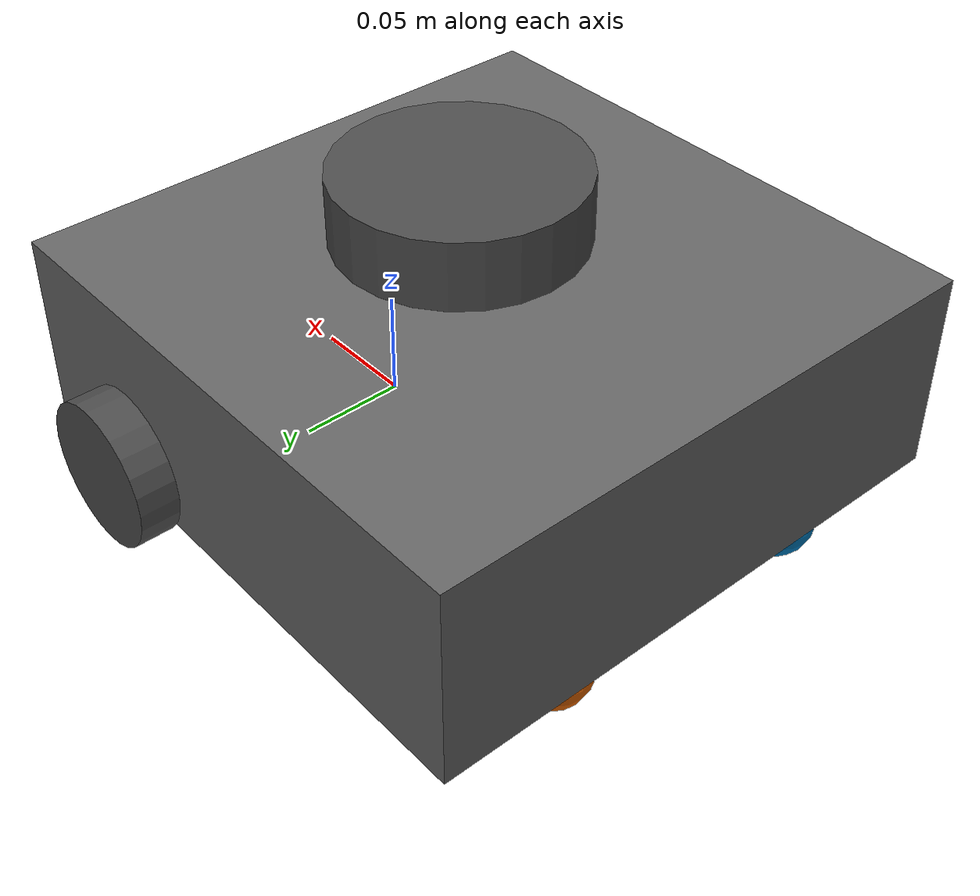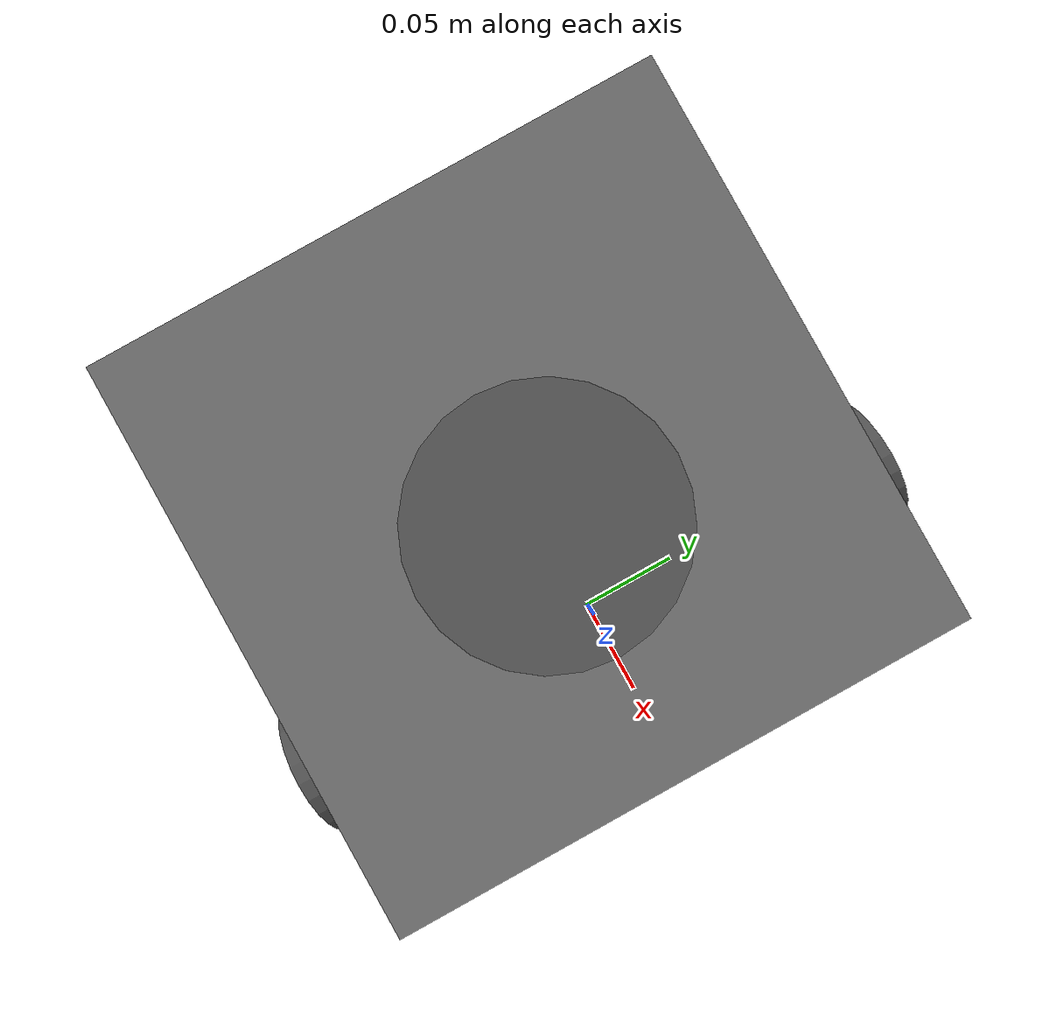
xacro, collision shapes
<?xml version="1.0" ?>
<robot name="turtlebot3_waffle_pi" xmlns:xacro="http://ros.org/wiki/xacro">

  <!-- ── Configurable parameters ──────────────────────────────────────── -->
  <xacro:arg name="laser_noise_std" default="0.01"/>
  <!-- 0.01 = Env A (moderate), 0.05 = Env B (high noise) -->

  <!-- ── Materials ─────────────────────────────────────────────────────── -->
  <material name="black"><color rgba="0.0 0.0 0.0 1.0"/></material>
  <material name="dark"><color rgba="0.3 0.3 0.3 1.0"/></material>
  <material name="light_black"><color rgba="0.4 0.4 0.4 1.0"/></material>
  <material name="blue"><color rgba="0.0 0.0 0.8 1.0"/></material>
  <material name="green"><color rgba="0.0 0.8 0.0 1.0"/></material>
  <material name="grey"><color rgba="0.5 0.5 0.5 1.0"/></material>
  <material name="white"><color rgba="1.0 1.0 1.0 1.0"/></material>

  <!-- ── Base footprint ────────────────────────────────────────────────── -->
  <link name="base_footprint"/>

  <joint name="base_joint" type="fixed">
    <parent link="base_footprint"/>
    <child link="base_link"/>
    <origin xyz="0 0 0.010" rpy="0 0 0"/>
  </joint>

  <!-- ── Base link ─────────────────────────────────────────────────────── -->
  <link name="base_link">
    <visual>
      <origin xyz="-0.064 0 0.0" rpy="0 0 0"/>
      <geometry>
        <mesh filename="package://turtlebot3_description/meshes/bases/waffle_pi_base.stl" scale="0.001 0.001 0.001"/>
      </geometry>
      <material name="light_black"/>
    </visual>
    <collision>
      <origin xyz="-0.064 0 0.047" rpy="0 0 0"/>
      <geometry>
        <box size="0.266 0.266 0.094"/>
      </geometry>
    </collision>
    <inertial>
      <origin xyz="0 0 0" rpy="0 0 0"/>
      <mass value="1.3729096"/>
      <inertia ixx="8.7002718e-03" ixy="-4.7576583e-05" ixz="1.1160499e-04"
               iyy="8.6195418e-03" iyz="-3.5422299e-06" izz="1.4612727e-02"/>
    </inertial>
  </link>

  <!-- ── Wheel joints and links ────────────────────────────────────────── -->
  <joint name="wheel_left_joint" type="continuous">
    <parent link="base_link"/>
    <child link="wheel_left_link"/>
    <origin xyz="0.0 0.144 0.023" rpy="-1.57079632679 0 0"/>
    <axis xyz="0 0 1"/>
  </joint>
  <link name="wheel_left_link">
    <visual>
      <origin xyz="0 0 0" rpy="1.57079632679 0 0"/>
      <geometry><mesh filename="package://turtlebot3_description/meshes/wheels/left_tire.stl" scale="0.001 0.001 0.001"/></geometry>
      <material name="dark"/>
    </visual>
    <collision>
      <origin xyz="0 0 0" rpy="0 0 0"/>
      <geometry><cylinder length="0.018" radius="0.033"/></geometry>
    </collision>
    <inertial>
      <origin xyz="0 0 0" rpy="0 0 0"/>
      <mass value="0.02844"/>
      <inertia ixx="1.1175580e-05" ixy="-4.2369783e-11" ixz="-5.9381719e-09"
               iyy="1.1192413e-05" iyz="-1.4400107e-11" izz="2.0712558e-05"/>
    </inertial>
  </link>

  <joint name="wheel_right_joint" type="continuous">
    <parent link="base_link"/>
    <child link="wheel_right_link"/>
    <origin xyz="0.0 -0.144 0.023" rpy="-1.57079632679 0 0"/>
    <axis xyz="0 0 1"/>
  </joint>
  <link name="wheel_right_link">
    <visual>
      <origin xyz="0 0 0" rpy="1.57079632679 0 0"/>
      <geometry><mesh filename="package://turtlebot3_description/meshes/wheels/right_tire.stl" scale="0.001 0.001 0.001"/></geometry>
      <material name="dark"/>
    </visual>
    <collision>
      <origin xyz="0 0 0" rpy="0 0 0"/>
      <geometry><cylinder length="0.018" radius="0.033"/></geometry>
    </collision>
    <inertial>
      <origin xyz="0 0 0" rpy="0 0 0"/>
      <mass value="0.02844"/>
      <inertia ixx="1.1175580e-05" ixy="-4.2369783e-11" ixz="-5.9381719e-09"
               iyy="1.1192413e-05" iyz="-1.4400107e-11" izz="2.0712558e-05"/>
    </inertial>
  </link>

  <!-- ── Caster wheel ───────────────────────────────────────────────────── -->
  <joint name="caster_back_right_joint" type="fixed">
    <parent link="base_link"/>
    <child link="caster_back_right_link"/>
    <origin xyz="-0.177 -0.064 -0.004" rpy="-1.57079632679 0 0"/>
  </joint>
  <link name="caster_back_right_link">
    <collision><origin xyz="0 0.001 0" rpy="0 0 0"/>
      <geometry><sphere radius="0.018"/></geometry></collision>
    <inertial><origin xyz="0 0 0" rpy="0 0 0"/><mass value="0.005"/>
      <inertia ixx="3.6e-07" ixy="0" ixz="0" iyy="3.6e-07" iyz="0" izz="3.6e-07"/></inertial>
  </link>

  <joint name="caster_back_left_joint" type="fixed">
    <parent link="base_link"/>
    <child link="caster_back_left_link"/>
    <origin xyz="-0.177 0.064 -0.004" rpy="-1.57079632679 0 0"/>
  </joint>
  <link name="caster_back_left_link">
    <collision><origin xyz="0 0.001 0" rpy="0 0 0"/>
      <geometry><sphere radius="0.018"/></geometry></collision>
    <inertial><origin xyz="0 0 0" rpy="0 0 0"/><mass value="0.005"/>
      <inertia ixx="3.6e-07" ixy="0" ixz="0" iyy="3.6e-07" iyz="0" izz="3.6e-07"/></inertial>
  </link>

  <!-- ── IMU link ───────────────────────────────────────────────────────── -->
  <joint name="imu_joint" type="fixed">
    <parent link="base_link"/>
    <child link="imu_link"/>
    <origin xyz="-0.032 0 0.068" rpy="0 0 0"/>
  </joint>
  <link name="imu_link"/>

  <!-- ── LDS-01 laser scanner ───────────────────────────────────────────── -->
  <joint name="scan_joint" type="fixed">
    <parent link="base_link"/>
    <child link="base_scan"/>
    <origin xyz="-0.064 0 0.122" rpy="0 0 0"/>
  </joint>

  <link name="base_scan">
    <visual>
      <origin xyz="0 0 0.0" rpy="0 0 0"/>
      <geometry>
        <mesh filename="package://turtlebot3_description/meshes/sensors/lds.stl" scale="0.001 0.001 0.001"/>
      </geometry>
      <material name="dark"/>
    </visual>
    <collision>
      <origin xyz="0.015 0 -0.0065" rpy="0 0 0"/>
      <geometry><cylinder length="0.0315" radius="0.055"/></geometry>
    </collision>
    <inertial>
      <mass value="0.114"/>
      <origin xyz="0 0 0"/>
      <inertia ixx="0.001" ixy="0" ixz="0" iyy="0.001" iyz="0" izz="0.001"/>
    </inertial>
  </link>

  <!-- ── Gazebo plugins ─────────────────────────────────────────────────── -->

  <!-- Differential drive controller — publishes /odom, subscribes /cmd_vel -->
  <gazebo>
    <plugin name="turtlebot3_diff_drive" filename="libgazebo_ros_diff_drive.so">
      <ros>
        <namespace>/</namespace>
        <remapping>cmd_vel:=cmd_vel</remapping>
        <remapping>odom:=odom</remapping>
      </ros>
      <update_rate>30</update_rate>
      <left_joint>wheel_left_joint</left_joint>
      <right_joint>wheel_right_joint</right_joint>
      <wheel_separation>0.287</wheel_separation>
      <wheel_diameter>0.066</wheel_diameter>
      <!-- TurtleBot3 Waffle Pi limits -->
      <max_wheel_torque>20</max_wheel_torque>
      <max_wheel_acceleration>1.0</max_wheel_acceleration>
      <publish_odom>true</publish_odom>
      <publish_odom_tf>true</publish_odom_tf>
      <publish_wheel_tf>false</publish_wheel_tf>
      <odometry_frame>odom</odometry_frame>
      <robot_base_frame>base_footprint</robot_base_frame>
    </plugin>
  </gazebo>

  <!-- LDS-01 laser plugin — real sensor model -->
  <gazebo reference="base_scan">
    <sensor name="lds_lfcd_sensor" type="ray">
      <pose>0 0 0 0 0 0</pose>
      <visualize>false</visualize>
      <update_rate>10</update_rate>   <!-- 5 Hz real, 10 Hz for faster sim -->
      <ray>
        <scan>
          <horizontal>
            <samples>360</samples>
            <resolution>1</resolution>
            <min_angle>0.0</min_angle>
            <max_angle>6.28318530718</max_angle>  <!-- 2π = full 360° -->
          </horizontal>
        </scan>
        <range>
          <min>0.120</min>   <!-- LDS-01 minimum range -->
          <max>3.500</max>   <!-- LDS-01 maximum range -->
          <resolution>0.015</resolution>
        </range>
        <noise>
          <type>gaussian</type>
          <mean>0.0</mean>
          <!-- Controlled by xacro arg: 0.01 for Env A, 0.05 for Env B -->
          <stddev>$(arg laser_noise_std)</stddev>
        </noise>
      </ray>
      <plugin name="turtlebot3_laserscan" filename="libgazebo_ros_ray_sensor.so">
        <ros>
          <remapping>~/out:=scan</remapping>
        </ros>
        <output_type>sensor_msgs/LaserScan</output_type>
        <frame_name>base_scan</frame_name>
      </plugin>
    </sensor>
  </gazebo>

  <!-- IMU plugin -->
  <gazebo reference="imu_link">
    <sensor name="tb3_imu" type="imu">
      <always_on>true</always_on>
      <update_rate>200</update_rate>
      <imu>
        <angular_velocity>
          <x><noise type="gaussian"><mean>0.0</mean><stddev>2e-4</stddev></noise></x>
          <y><noise type="gaussian"><mean>0.0</mean><stddev>2e-4</stddev></noise></y>
          <z><noise type="gaussian"><mean>0.0</mean><stddev>2e-4</stddev></noise></z>
        </angular_velocity>
        <linear_acceleration>
          <x><noise type="gaussian"><mean>0.0</mean><stddev>1.7e-2</stddev></noise></x>
          <y><noise type="gaussian"><mean>0.0</mean><stddev>1.7e-2</stddev></noise></y>
          <z><noise type="gaussian"><mean>0.0</mean><stddev>1.7e-2</stddev></noise></z>
        </linear_acceleration>
      </imu>
      <plugin name="turtlebot3_imu" filename="libgazebo_ros_imu_sensor.so">
        <ros><remapping>~/out:=imu</remapping></ros>
        <initial_orientation_as_reference>false</initial_orientation_as_reference>
      </plugin>
    </sensor>
  </gazebo>

  <!-- Base link friction -->
  <gazebo reference="base_link">
    <material>Gazebo/DarkGrey</material>
  </gazebo>
  <gazebo reference="wheel_left_link">
    <mu1>1.0</mu1><mu2>1.0</mu2>
    <kp>500000.0</kp><kd>10.0</kd>
    <slip1>0.0</slip1><slip2>0.0</slip2>
    <material>Gazebo/FlatBlack</material>
  </gazebo>
  <gazebo reference="wheel_right_link">
    <mu1>1.0</mu1><mu2>1.0</mu2>
    <kp>500000.0</kp><kd>10.0</kd>
    <slip1>0.0</slip1><slip2>0.0</slip2>
    <material>Gazebo/FlatBlack</material>
  </gazebo>

</robot>
